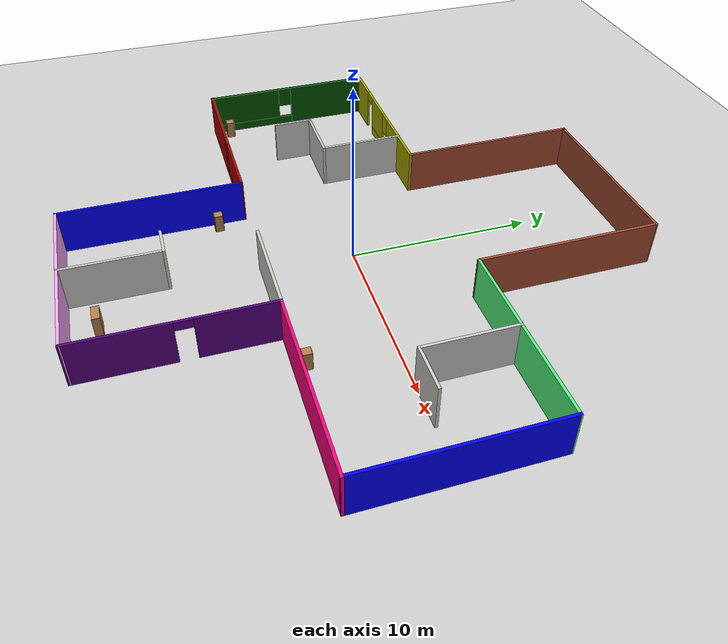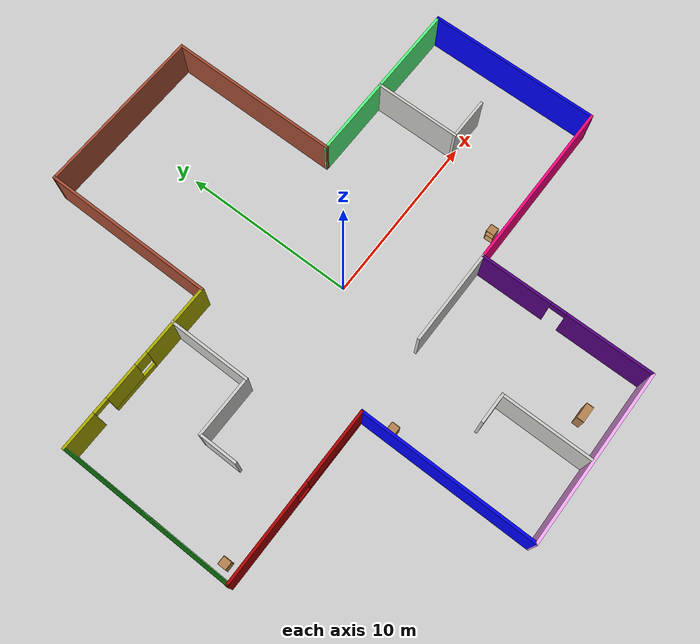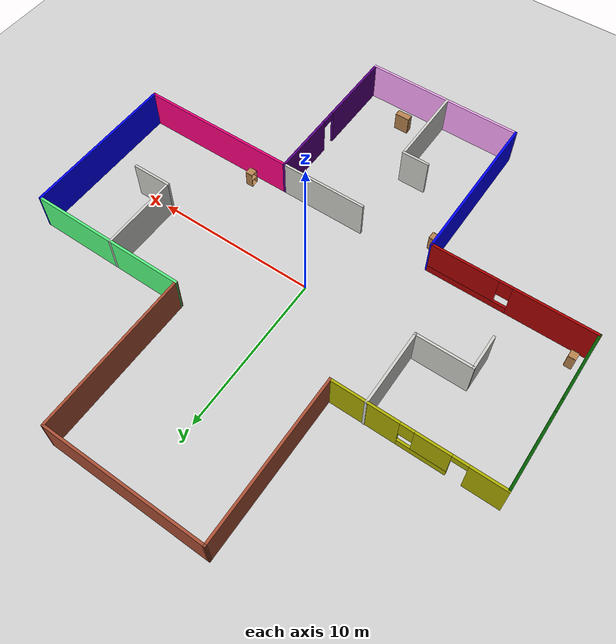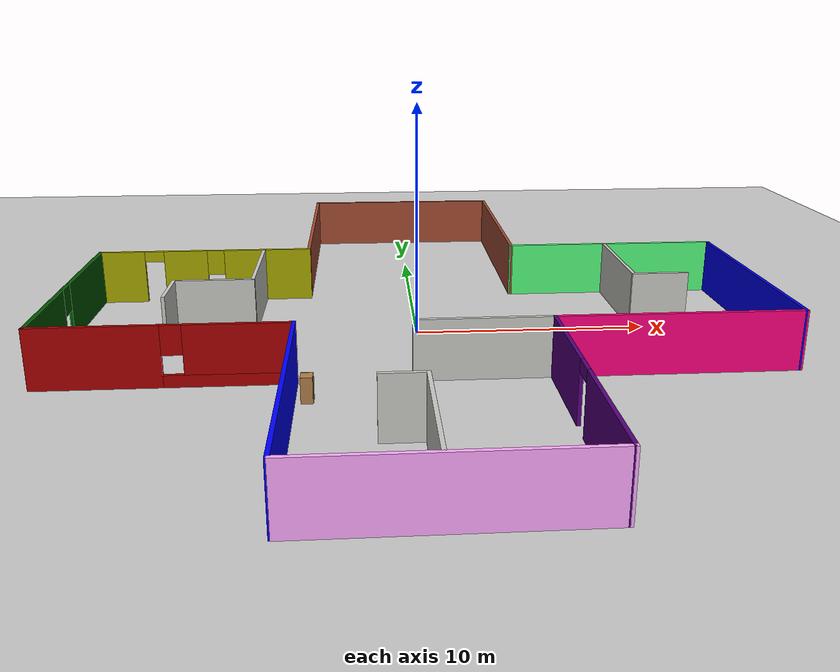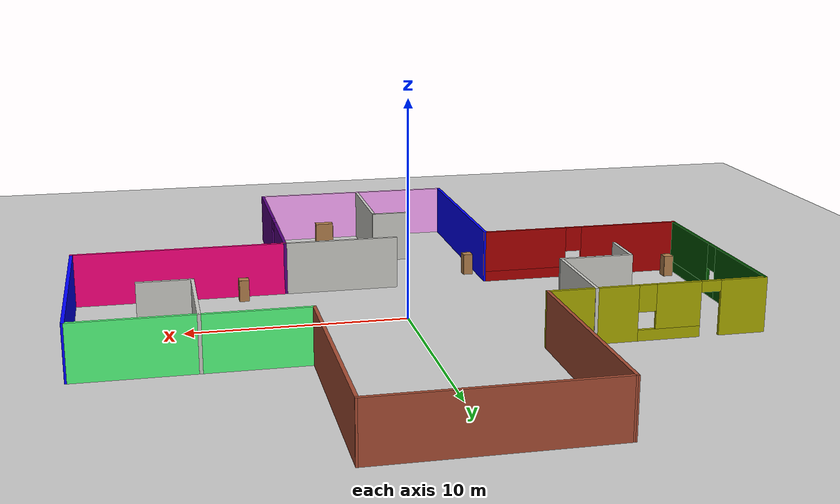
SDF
<sdf version="1.6">
 <world name="default">
  <model name="ground_plane">
   <static>1</static>
   <link name="link">
    <collision name="collision">
     <geometry><plane><normal>0 0 1</normal><size>100 100</size></plane></geometry>
     <surface><friction><ode><mu>100</mu><mu2>50</mu2></ode></friction></surface>
    </collision>
    <visual name="visual">
     <cast_shadows>0</cast_shadows>
     <geometry><plane><normal>0 0 1</normal><size>100 100</size></plane></geometry>
     <material>
      <script><uri>file://media/materials/scripts/gazebo.material</uri><name>Gazebo/Grey</name></script>
     </material>
    </visual>
   </link>
  </model>
  <model name="SumBuilding">
   <link name="Wall_1">
    <collision name="Wall_1_Collision">
     <geometry><box><size>10 0.15 2.5</size></box></geometry>
     <pose>0 0 1.25 0 -0 0</pose>
    </collision>
    <visual name="Wall_1_Visual">
     <pose>0 0 1.25 0 -0 0</pose>
     <geometry><box><size>10 0.15 2.5</size></box></geometry>
     <material>
      <script><uri>file://media/materials/scripts/gazebo.material</uri><name>Gazebo/Bricks</name></script>
      <ambient>0 1 0 1</ambient>
     </material>
     <meta><layer>0</layer></meta>
    </visual>
    <pose>0.013093 14.7751 0 0 0 -0.003397</pose>
   </link>
   <link name="Wall_11">
    <pose>-9.85305 -4.92335 0 0 -0 0</pose>
    <visual name="Wall_11_Visual_0">
     <pose>-2.50345 0 1.25 0 -0 0</pose>
     <geometry><box><size>4.99311 0.15 2.5</size></box></geometry>
     <material>
      <script><uri>file://media/materials/scripts/gazebo.material</uri><name>Gazebo/Grey</name></script>
      <ambient>0.666667 0 0 1</ambient>
     </material>
     <meta><layer>0</layer></meta>
    </visual>
    <collision name="Wall_11_Collision_0">
     <geometry><box><size>4.99311 0.15 2.5</size></box></geometry>
     <pose>-2.50345 0 1.25 0 -0 0</pose>
    </collision>
    <visual name="Wall_11_Visual_1">
     <pose>2.49655 0 0.25 0 -0 0</pose>
     <geometry><box><size>5.00689 0.15 0.5</size></box></geometry>
     <material>
      <script><uri>file://media/materials/scripts/gazebo.material</uri><name>Gazebo/Grey</name></script>
      <ambient>0.666667 0 0 1</ambient>
     </material>
     <meta><layer>0</layer></meta>
    </visual>
    <collision name="Wall_11_Collision_1">
     <geometry><box><size>5.00689 0.15 0.5</size></box></geometry>
     <pose>2.49655 0 0.25 0 -0 0</pose>
    </collision>
    <visual name="Wall_11_Visual_2">
     <pose>2.89655 0 1.5 0 -0 0</pose>
     <geometry><box><size>4.20689 0.15 2</size></box></geometry>
     <material>
      <script><uri>file://media/materials/scripts/gazebo.material</uri><name>Gazebo/Grey</name></script>
      <ambient>0.666667 0 0 1</ambient>
     </material>
     <meta><layer>0</layer></meta>
    </visual>
    <collision name="Wall_11_Collision_2">
     <geometry><box><size>4.20689 0.15 2</size></box></geometry>
     <pose>2.89655 0 1.5 0 -0 0</pose>
    </collision>
    <visual name="Wall_11_Visual_3">
     <pose>0.393106 0 1.9 0 -0 0</pose>
     <geometry><box><size>0.8 0.15 1.2</size></box></geometry>
     <material>
      <script><uri>file://media/materials/scripts/gazebo.material</uri><name>Gazebo/Grey</name></script>
      <ambient>0.666667 0 0 1</ambient>
     </material>
     <meta><layer>0</layer></meta>
    </visual>
    <collision name="Wall_11_Collision_3">
     <geometry><box><size>0.8 0.15 1.2</size></box></geometry>
     <pose>0.393106 0 1.9 0 -0 0</pose>
    </collision>
   </link>
   <link name="Wall_13">
    <collision name="Wall_13_Collision">
     <geometry><box><size>10 0.15 2.5</size></box></geometry>
     <pose>0 0 1.25 0 -0 0</pose>
    </collision>
    <visual name="Wall_13_Visual">
     <pose>0 0 1.25 0 -0 0</pose>
     <geometry><box><size>10 0.15 2.5</size></box></geometry>
     <material>
      <script><uri>file://media/materials/scripts/gazebo.material</uri><name>Gazebo/Grey</name></script>
      <ambient>0 0 1 1</ambient>
     </material>
     <meta><layer>0</layer></meta>
    </visual>
    <pose>-4.92501 -9.84834 0 0 0 -1.57018</pose>
   </link>
   <link name="Wall_15">
    <collision name="Wall_15_Collision">
     <geometry><box><size>10 0.15 2.5</size></box></geometry>
     <pose>0 0 1.25 0 -0 0</pose>
    </collision>
    <visual name="Wall_15_Visual">
     <pose>0 0 1.25 0 -0 0</pose>
     <geometry><box><size>10 0.15 2.5</size></box></geometry>
     <material>
      <script><uri>file://media/materials/scripts/gazebo.material</uri><name>Gazebo/Grey</name></script>
      <ambient>1 0.666667 1 1</ambient>
     </material>
     <meta><layer>0</layer></meta>
    </visual>
    <pose>0.003026 -14.7827 0 0 0 -0.001891</pose>
   </link>
   <link name="Wall_17">
    <pose>4.92801 -9.86697 0 0 -0 1.5708</pose>
    <visual name="Wall_17_Visual_0">
     <pose>-2.50628 0 1.25 0 -0 0</pose>
     <geometry><box><size>4.98743 0.15 2.5</size></box></geometry>
     <material>
      <script><uri>file://media/materials/scripts/gazebo.material</uri><name>Gazebo/Grey</name></script>
      <ambient>0.333333 0 0.498039 1</ambient>
     </material>
     <meta><layer>0</layer></meta>
    </visual>
    <collision name="Wall_17_Collision_0">
     <geometry><box><size>4.98743 0.15 2.5</size></box></geometry>
     <pose>-2.50628 0 1.25 0 -0 0</pose>
    </collision>
    <visual name="Wall_17_Visual_1">
     <pose>2.94372 0 1.25 0 -0 0</pose>
     <geometry><box><size>4.11257 0.15 2.5</size></box></geometry>
     <material>
      <script><uri>file://media/materials/scripts/gazebo.material</uri><name>Gazebo/Grey</name></script>
      <ambient>0.333333 0 0.498039 1</ambient>
     </material>
     <meta><layer>0</layer></meta>
    </visual>
    <collision name="Wall_17_Collision_1">
     <geometry><box><size>4.11257 0.15 2.5</size></box></geometry>
     <pose>2.94372 0 1.25 0 -0 0</pose>
    </collision>
    <visual name="Wall_17_Visual_2">
     <pose>0.437432 0 2.25 0 -0 0</pose>
     <geometry><box><size>0.9 0.15 0.5</size></box></geometry>
     <material>
      <script><uri>file://media/materials/scripts/gazebo.material</uri><name>Gazebo/Grey</name></script>
      <ambient>0.333333 0 0.498039 1</ambient>
     </material>
     <meta><layer>0</layer></meta>
    </visual>
    <collision name="Wall_17_Collision_2">
     <geometry><box><size>0.9 0.15 0.5</size></box></geometry>
     <pose>0.437432 0 2.25 0 -0 0</pose>
    </collision>
   </link>
   <link name="Wall_19">
    <collision name="Wall_19_Collision">
     <geometry><box><size>10 0.15 2.5</size></box></geometry>
     <pose>0 0 1.25 0 -0 0</pose>
    </collision>
    <visual name="Wall_19_Visual">
     <pose>0 0 1.25 0 -0 0</pose>
     <geometry><box><size>10 0.15 2.5</size></box></geometry>
     <material>
      <script><uri>file://media/materials/scripts/gazebo.material</uri><name>Gazebo/Grey</name></script>
      <ambient>1 0 0.498039 1</ambient>
     </material>
     <meta><layer>0</layer></meta>
    </visual>
    <pose>9.85301 -4.94178 0 0 -0 3.8e-05</pose>
   </link>
   <link name="Wall_21">
    <collision name="Wall_21_Collision">
     <geometry><box><size>10 0.15 2.5</size></box></geometry>
     <pose>0 0 1.25 0 -0 0</pose>
    </collision>
    <visual name="Wall_21_Visual">
     <pose>0 0 1.25 0 -0 0</pose>
     <geometry><box><size>10 0.15 2.5</size></box></geometry>
     <material>
      <script><uri>file://media/materials/scripts/gazebo.material</uri><name>Gazebo/Grey</name></script>
      <ambient>0 0 1 1</ambient>
     </material>
     <meta><layer>0</layer></meta>
    </visual>
    <pose>14.7753 -0.016591 0 0 -0 1.57134</pose>
   </link>
   <link name="Wall_23">
    <collision name="Wall_23_Collision">
     <geometry><box><size>10 0.15 2.5</size></box></geometry>
     <pose>0 0 1.25 0 -0 0</pose>
    </collision>
    <visual name="Wall_23_Visual">
     <pose>0 0 1.25 0 -0 0</pose>
     <geometry><box><size>10 0.15 2.5</size></box></geometry>
     <material>
      <script><uri>file://media/materials/scripts/gazebo.material</uri><name>Gazebo/Grey</name></script>
      <ambient>0.333333 1 0.498039 1</ambient>
     </material>
     <meta><layer>0</layer></meta>
    </visual>
    <pose>9.84762 4.90841 0 0 -0 3.14159</pose>
   </link>
   <link name="Wall_27">
    <collision name="Wall_27_Collision">
     <geometry><box><size>10 0.15 2.5</size></box></geometry>
     <pose>0 0 1.25 0 -0 0</pose>
    </collision>
    <visual name="Wall_27_Visual">
     <pose>0 0 1.25 0 -0 0</pose>
     <geometry><box><size>10 0.15 2.5</size></box></geometry>
     <material>
      <script><uri>file://media/materials/scripts/gazebo.material</uri><name>Gazebo/Bricks</name></script>
      <ambient>1 1 0 1</ambient>
     </material>
     <meta><layer>0</layer></meta>
    </visual>
    <pose>4.93035 9.8334 0 0 -0 1.56923</pose>
   </link>
   <link name="Wall_29">
    <collision name="Wall_29_Collision">
     <geometry><box><size>5 0.15 2.5</size></box></geometry>
     <pose>0 0 1.25 0 -0 0</pose>
    </collision>
    <visual name="Wall_29_Visual">
     <pose>0 0 1.25 0 -0 0</pose>
     <geometry><box><size>5 0.15 2.5</size></box></geometry>
     <material>
      <script><uri>file://media/materials/scripts/gazebo.material</uri><name>Gazebo/CeilingTiled</name></script>
      <ambient>0.333333 0.333333 1 1</ambient>
     </material>
     <meta><layer>0</layer></meta>
    </visual>
    <pose>9.53345 2.48414 0 0 0 -1.5708</pose>
   </link>
   <link name="Wall_3">
    <collision name="Wall_3_Collision">
     <geometry><box><size>10 0.15 2.5</size></box></geometry>
     <pose>0 0 1.25 0 -0 0</pose>
    </collision>
    <visual name="Wall_3_Visual">
     <pose>0 0 1.25 0 -0 0</pose>
     <geometry><box><size>10 0.15 2.5</size></box></geometry>
     <material>
      <script><uri>file://media/materials/scripts/gazebo.material</uri><name>Gazebo/Bricks</name></script>
      <ambient>0.666667 0.333333 0 1</ambient>
     </material>
     <meta><layer>0</layer></meta>
    </visual>
    <pose>-4.91188 9.86685 0 0 0 -1.5708</pose>
   </link>
   <link name="Wall_30">
    <collision name="Wall_30_Collision">
     <geometry><box><size>2.5 0.15 2.5</size></box></geometry>
     <pose>0 0 1.25 0 -0 0</pose>
    </collision>
    <visual name="Wall_30_Visual">
     <pose>0 0 1.25 0 -0 0</pose>
     <geometry><box><size>2.5 0.15 2.5</size></box></geometry>
     <material>
      <script><uri>file://media/materials/scripts/gazebo.material</uri><name>Gazebo/CeilingTiled</name></script>
      <ambient>0.333333 0.333333 1 1</ambient>
     </material>
     <meta><layer>0</layer></meta>
    </visual>
    <pose>10.7084 0.059135 0 0 -0 0</pose>
   </link>
   <link name="Wall_32">
    <collision name="Wall_32_Collision">
     <geometry><box><size>5.25 0.15 2.5</size></box></geometry>
     <pose>0 0 1.25 0 -0 0</pose>
    </collision>
    <visual name="Wall_32_Visual">
     <pose>0 0 1.25 0 -0 0</pose>
     <geometry><box><size>5.25 0.15 2.5</size></box></geometry>
     <material>
      <script><uri>file://media/materials/scripts/gazebo.material</uri><name>Gazebo/CeilingTiled</name></script>
      <ambient>0.333333 0.666667 1 1</ambient>
     </material>
     <meta><layer>0</layer></meta>
    </visual>
    <pose>-0.257513 -12.2298 0 0 -0 1.5708</pose>
   </link>
   <link name="Wall_33">
    <collision name="Wall_33_Collision">
     <geometry><box><size>1.75 0.15 2.5</size></box></geometry>
     <pose>0 0 1.25 0 -0 0</pose>
    </collision>
    <visual name="Wall_33_Visual">
     <pose>0 0 1.25 0 -0 0</pose>
     <geometry><box><size>1.75 0.15 2.5</size></box></geometry>
     <material>
      <script><uri>file://media/materials/scripts/gazebo.material</uri><name>Gazebo/CeilingTiled</name></script>
      <ambient>0.333333 0 0.498039 1</ambient>
     </material>
     <meta><layer>0</layer></meta>
    </visual>
    <pose>-1.05751 -9.67979 0 0 -0 3.14159</pose>
   </link>
   <link name="Wall_35">
    <collision name="Wall_35_Collision">
     <geometry><box><size>5.5 0.15 2.5</size></box></geometry>
     <pose>0 0 1.25 0 -0 0</pose>
    </collision>
    <visual name="Wall_35_Visual">
     <pose>0 0 1.25 0 -0 0</pose>
     <geometry><box><size>5.5 0.15 2.5</size></box></geometry>
     <material>
      <script><uri>file://media/materials/scripts/gazebo.material</uri><name>Gazebo/CeilingTiled</name></script>
      <ambient>1 0.666667 0 1</ambient>
     </material>
     <meta><layer>0</layer></meta>
    </visual>
    <pose>2.25301 -4.94197 0 0 -0 3.14159</pose>
   </link>
   <link name="Wall_37">
    <collision name="Wall_37_Collision">
     <geometry><box><size>4.75 0.15 2.5</size></box></geometry>
     <pose>0 0 1.25 0 -0 0</pose>
    </collision>
    <visual name="Wall_37_Visual">
     <pose>0 0 1.25 0 -0 0</pose>
     <geometry><box><size>4.75 0.15 2.5</size></box></geometry>
     <material>
      <script><uri>file://media/materials/scripts/gazebo.material</uri><name>Gazebo/CeilingTiled</name></script>
      <ambient>0.666667 0 1 1</ambient>
     </material>
     <meta><layer>0</layer></meta>
    </visual>
    <pose>-7.05233 2.66264 0 0 0 -1.5708</pose>
   </link>
   <link name="Wall_38">
    <collision name="Wall_38_Collision">
     <geometry><box><size>3.5 0.15 2.5</size></box></geometry>
     <pose>0 0 1.25 0 -0 0</pose>
    </collision>
    <visual name="Wall_38_Visual">
     <pose>0 0 1.25 0 -0 0</pose>
     <geometry><box><size>3.5 0.15 2.5</size></box></geometry>
     <material>
      <script><uri>file://media/materials/scripts/gazebo.material</uri><name>Gazebo/CeilingTiled</name></script>
      <ambient>0.666667 0 1 1</ambient>
     </material>
     <meta><layer>0</layer></meta>
    </visual>
    <pose>-8.72733 0.362638 0 0 -0 3.14159</pose>
   </link>
   <link name="Wall_39">
    <collision name="Wall_39_Collision">
     <geometry><box><size>2.25 0.15 2.5</size></box></geometry>
     <pose>0 0 1.25 0 -0 0</pose>
    </collision>
    <visual name="Wall_39_Visual">
     <pose>0 0 1.25 0 -0 0</pose>
     <geometry><box><size>2.25 0.15 2.5</size></box></geometry>
     <material>
      <script><uri>file://media/materials/scripts/gazebo.material</uri><name>Gazebo/CeilingTiled</name></script>
      <ambient>0.666667 0 1 1</ambient>
     </material>
     <meta><layer>0</layer></meta>
    </visual>
    <pose>-10.4023 -0.687362 0 0 0 -1.5708</pose>
   </link>
   <link name="Wall_7">
    <pose>-9.83688 4.94185 0 0 -0 3.14159</pose>
    <visual name="Wall_7_Visual_0">
     <pose>-2.94197 0 1.25 0 -0 0</pose>
     <geometry><box><size>4.11606 0.15 2.5</size></box></geometry>
     <material>
      <script><uri>file://media/materials/scripts/gazebo.material</uri><name>Gazebo/Grey</name></script>
      <ambient>0.666667 0.666667 0 1</ambient>
     </material>
     <meta><layer>0</layer></meta>
    </visual>
    <collision name="Wall_7_Collision_0">
     <geometry><box><size>4.11606 0.15 2.5</size></box></geometry>
     <pose>-2.94197 0 1.25 0 -0 0</pose>
    </collision>
    <visual name="Wall_7_Visual_1">
     <pose>3.9276 0 1.25 0 -0 0</pose>
     <geometry><box><size>2.14481 0.15 2.5</size></box></geometry>
     <material>
      <script><uri>file://media/materials/scripts/gazebo.material</uri><name>Gazebo/Grey</name></script>
      <ambient>0.666667 0.666667 0 1</ambient>
     </material>
     <meta><layer>0</layer></meta>
    </visual>
    <collision name="Wall_7_Collision_1">
     <geometry><box><size>2.14481 0.15 2.5</size></box></geometry>
     <pose>3.9276 0 1.25 0 -0 0</pose>
    </collision>
    <visual name="Wall_7_Visual_2">
     <pose>0.535626 0 0.25 0 -0 0</pose>
     <geometry><box><size>2.83914 0.15 0.5</size></box></geometry>
     <material>
      <script><uri>file://media/materials/scripts/gazebo.material</uri><name>Gazebo/Grey</name></script>
      <ambient>0.666667 0.666667 0 1</ambient>
     </material>
     <meta><layer>0</layer></meta>
    </visual>
    <collision name="Wall_7_Collision_2">
     <geometry><box><size>2.83914 0.15 0.5</size></box></geometry>
     <pose>0.535626 0 0.25 0 -0 0</pose>
    </collision>
    <visual name="Wall_7_Visual_3">
     <pose>0.935626 0 1.5 0 -0 0</pose>
     <geometry><box><size>2.03913 0.15 2</size></box></geometry>
     <material>
      <script><uri>file://media/materials/scripts/gazebo.material</uri><name>Gazebo/Grey</name></script>
      <ambient>0.666667 0.666667 0 1</ambient>
     </material>
     <meta><layer>0</layer></meta>
    </visual>
    <collision name="Wall_7_Collision_3">
     <geometry><box><size>2.03913 0.15 2</size></box></geometry>
     <pose>0.935626 0 1.5 0 -0 0</pose>
    </collision>
    <visual name="Wall_7_Visual_4">
     <pose>-0.483942 0 1.9 0 -0 0</pose>
     <geometry><box><size>0.8 0.15 1.2</size></box></geometry>
     <material>
      <script><uri>file://media/materials/scripts/gazebo.material</uri><name>Gazebo/Grey</name></script>
      <ambient>0.666667 0.666667 0 1</ambient>
     </material>
     <meta><layer>0</layer></meta>
    </visual>
    <collision name="Wall_7_Collision_4">
     <geometry><box><size>0.8 0.15 1.2</size></box></geometry>
     <pose>-0.483942 0 1.9 0 -0 0</pose>
    </collision>
    <visual name="Wall_7_Visual_5">
     <pose>2.40519 0 2.25 0 -0 0</pose>
     <geometry><box><size>0.9 0.15 0.5</size></box></geometry>
     <material>
      <script><uri>file://media/materials/scripts/gazebo.material</uri><name>Gazebo/Grey</name></script>
      <ambient>0.666667 0.666667 0 1</ambient>
     </material>
     <meta><layer>0</layer></meta>
    </visual>
    <collision name="Wall_7_Collision_5">
     <geometry><box><size>0.9 0.15 0.5</size></box></geometry>
     <pose>2.40519 0 2.25 0 -0 0</pose>
    </collision>
   </link>
   <link name="Wall_9">
    <pose>-14.7619 0.016854 0 0 0 -1.5708</pose>
    <visual name="Wall_9_Visual_0">
     <pose>-2.57802 0 1.25 0 -0 0</pose>
     <geometry><box><size>4.84396 0.15 2.5</size></box></geometry>
     <material>
      <script><uri>file://media/materials/scripts/gazebo.material</uri><name>Gazebo/Grey</name></script>
      <ambient>0 0.333333 0 1</ambient>
     </material>
     <meta><layer>0</layer></meta>
    </visual>
    <collision name="Wall_9_Collision_0">
     <geometry><box><size>4.84396 0.15 2.5</size></box></geometry>
     <pose>-2.57802 0 1.25 0 -0 0</pose>
    </collision>
    <visual name="Wall_9_Visual_1">
     <pose>2.42198 0 0.25 0 -0 0</pose>
     <geometry><box><size>5.15604 0.15 0.5</size></box></geometry>
     <material>
      <script><uri>file://media/materials/scripts/gazebo.material</uri><name>Gazebo/Grey</name></script>
      <ambient>0 0.333333 0 1</ambient>
     </material>
     <meta><layer>0</layer></meta>
    </visual>
    <collision name="Wall_9_Collision_1">
     <geometry><box><size>5.15604 0.15 0.5</size></box></geometry>
     <pose>2.42198 0 0.25 0 -0 0</pose>
    </collision>
    <visual name="Wall_9_Visual_2">
     <pose>2.82198 0 1.5 0 -0 0</pose>
     <geometry><box><size>4.35604 0.15 2</size></box></geometry>
     <material>
      <script><uri>file://media/materials/scripts/gazebo.material</uri><name>Gazebo/Grey</name></script>
      <ambient>0 0.333333 0 1</ambient>
     </material>
     <meta><layer>0</layer></meta>
    </visual>
    <collision name="Wall_9_Collision_2">
     <geometry><box><size>4.35604 0.15 2</size></box></geometry>
     <pose>2.82198 0 1.5 0 -0 0</pose>
    </collision>
    <visual name="Wall_9_Visual_3">
     <pose>0.243959 0 1.9 0 -0 0</pose>
     <geometry><box><size>0.8 0.15 1.2</size></box></geometry>
     <material>
      <script><uri>file://media/materials/scripts/gazebo.material</uri><name>Gazebo/Grey</name></script>
      <ambient>0 0.333333 0 1</ambient>
     </material>
     <meta><layer>0</layer></meta>
    </visual>
    <collision name="Wall_9_Collision_3">
     <geometry><box><size>0.8 0.15 1.2</size></box></geometry>
     <pose>0.243959 0 1.9 0 -0 0</pose>
    </collision>
   </link>
   <static>1</static>
  </model>
  <model name="cabinet_clone">
   <static>1</static>
   <link name="cabinet_bottom_plate">
    <inertial>
     <pose>0 0 -1 0 -0 0</pose>
     <inertia><ixx>2.05</ixx><ixy>0</ixy><ixz>0</ixz><iyy>2.05</iyy><iyz>0</iyz><izz>2.05</izz></inertia>
     <mass>25</mass>
    </inertial>
    <collision name="cabinet_bottom_plate_geom">
     <pose>0 0 0.01 0 -0 0</pose>
     <geometry><box><size>0.45 0.45 0.02</size></box></geometry>
    </collision>
    <visual name="cabinet_bottom_plate_geom_visual">
     <pose>0 0 0.01 0 -0 0</pose>
     <geometry><box><size>0.45 0.45 0.02</size></box></geometry>
     <material>
      <script><uri>file://media/materials/scripts/gazebo.material</uri><name>Gazebo/Wood</name></script>
     </material>
    </visual>
    <collision name="cabinet_bottom_plate_geom_cabinet_back_plate">
     <pose>0.235 0 0.51 0 -0 0</pose>
     <geometry><box><size>0.02 0.45 1.02</size></box></geometry>
    </collision>
    <visual name="cabinet_bottom_plate_geom_cabinet_back_plate_visual">
     <pose>0.235 0 0.51 0 -0 0</pose>
     <geometry><box><size>0.02 0.45 1.02</size></box></geometry>
     <material>
      <script><uri>file://media/materials/scripts/gazebo.material</uri><name>Gazebo/Wood</name></script>
     </material>
    </visual>
    <collision name="cabinet_bottom_plate_geom_cabinet_left_plate">
     <pose>0 0.235 0.51 0 -0 0</pose>
     <geometry><box><size>0.45 0.02 1.02</size></box></geometry>
    </collision>
    <visual name="cabinet_bottom_plate_geom_cabinet_left_plate_visual">
     <pose>0 0.235 0.51 0 -0 0</pose>
     <geometry><box><size>0.45 0.02 1.02</size></box></geometry>
     <material>
      <script><uri>file://media/materials/scripts/gazebo.material</uri><name>Gazebo/Wood</name></script>
     </material>
    </visual>
    <collision name="cabinet_bottom_plate_geom_cabinet_middle_plate">
     <pose>0 0 0.51 0 -0 0</pose>
     <geometry><box><size>0.45 0.45 0.02</size></box></geometry>
    </collision>
    <visual name="cabinet_bottom_plate_geom_cabinet_middle_plate_visual">
     <pose>0 0 0.51 0 -0 0</pose>
     <geometry><box><size>0.45 0.45 0.02</size></box></geometry>
     <material>
      <script><uri>file://media/materials/scripts/gazebo.material</uri><name>Gazebo/Wood</name></script>
     </material>
    </visual>
    <collision name="cabinet_bottom_plate_geom_cabinet_right_plate">
     <pose>0 -0.235 0.51 0 -0 0</pose>
     <geometry><box><size>0.45 0.02 1.02</size></box></geometry>
    </collision>
    <visual name="cabinet_bottom_plate_geom_cabinet_right_plate_visual">
     <pose>0 -0.235 0.51 0 -0 0</pose>
     <geometry><box><size>0.45 0.02 1.02</size></box></geometry>
     <material>
      <script><uri>file://media/materials/scripts/gazebo.material</uri><name>Gazebo/Wood</name></script>
     </material>
    </visual>
    <collision name="cabinet_bottom_plate_geom_cabinet_top_plate">
     <pose>0 0 1.01 0 -0 0</pose>
     <geometry><box><size>0.45 0.45 0.02</size></box></geometry>
    </collision>
    <visual name="cabinet_bottom_plate_geom_cabinet_top_plate_visual">
     <pose>0 0 1.01 0 -0 0</pose>
     <geometry><box><size>0.45 0.45 0.02</size></box></geometry>
     <material>
      <script><uri>file://media/materials/scripts/gazebo.material</uri><name>Gazebo/Wood</name></script>
     </material>
    </visual>
   </link>
   <pose>-14.1468 -4.05254 0 0 -0 0</pose>
  </model>
  <model name="cabinet_clone_clone_clone_clone_0">
   <static>1</static>
   <link name="cabinet_bottom_plate">
    <inertial>
     <pose>0 0 -1 0 -0 0</pose>
     <inertia><ixx>2.05</ixx><ixy>0</ixy><ixz>0</ixz><iyy>2.05</iyy><iyz>0</iyz><izz>2.05</izz></inertia>
     <mass>25</mass>
    </inertial>
    <collision name="cabinet_bottom_plate_geom">
     <pose>0 0 0.01 0 -0 0</pose>
     <geometry><box><size>0.45 0.45 0.02</size></box></geometry>
    </collision>
    <visual name="cabinet_bottom_plate_geom_visual">
     <pose>0 0 0.01 0 -0 0</pose>
     <geometry><box><size>0.45 0.45 0.02</size></box></geometry>
     <material>
      <script><uri>file://media/materials/scripts/gazebo.material</uri><name>Gazebo/Wood</name></script>
     </material>
    </visual>
    <collision name="cabinet_bottom_plate_geom_cabinet_back_plate">
     <pose>0.235 0 0.51 0 -0 0</pose>
     <geometry><box><size>0.02 0.45 1.02</size></box></geometry>
    </collision>
    <visual name="cabinet_bottom_plate_geom_cabinet_back_plate_visual">
     <pose>0.235 0 0.51 0 -0 0</pose>
     <geometry><box><size>0.02 0.45 1.02</size></box></geometry>
     <material>
      <script><uri>file://media/materials/scripts/gazebo.material</uri><name>Gazebo/Wood</name></script>
     </material>
    </visual>
    <collision name="cabinet_bottom_plate_geom_cabinet_left_plate">
     <pose>0 0.235 0.51 0 -0 0</pose>
     <geometry><box><size>0.45 0.02 1.02</size></box></geometry>
    </collision>
    <visual name="cabinet_bottom_plate_geom_cabinet_left_plate_visual">
     <pose>0 0.235 0.51 0 -0 0</pose>
     <geometry><box><size>0.45 0.02 1.02</size></box></geometry>
     <material>
      <script><uri>file://media/materials/scripts/gazebo.material</uri><name>Gazebo/Wood</name></script>
     </material>
    </visual>
    <collision name="cabinet_bottom_plate_geom_cabinet_middle_plate">
     <pose>0 0 0.51 0 -0 0</pose>
     <geometry><box><size>0.45 0.45 0.02</size></box></geometry>
    </collision>
    <visual name="cabinet_bottom_plate_geom_cabinet_middle_plate_visual">
     <pose>0 0 0.51 0 -0 0</pose>
     <geometry><box><size>0.45 0.45 0.02</size></box></geometry>
     <material>
      <script><uri>file://media/materials/scripts/gazebo.material</uri><name>Gazebo/Wood</name></script>
     </material>
    </visual>
    <collision name="cabinet_bottom_plate_geom_cabinet_right_plate">
     <pose>0 -0.235 0.51 0 -0 0</pose>
     <geometry><box><size>0.45 0.02 1.02</size></box></geometry>
    </collision>
    <visual name="cabinet_bottom_plate_geom_cabinet_right_plate_visual">
     <pose>0 -0.235 0.51 0 -0 0</pose>
     <geometry><box><size>0.45 0.02 1.02</size></box></geometry>
     <material>
      <script><uri>file://media/materials/scripts/gazebo.material</uri><name>Gazebo/Wood</name></script>
     </material>
    </visual>
    <collision name="cabinet_bottom_plate_geom_cabinet_top_plate">
     <pose>0 0 1.01 0 -0 0</pose>
     <geometry><box><size>0.45 0.45 0.02</size></box></geometry>
    </collision>
    <visual name="cabinet_bottom_plate_geom_cabinet_top_plate_visual">
     <pose>0 0 1.01 0 -0 0</pose>
     <geometry><box><size>0.45 0.45 0.02</size></box></geometry>
     <material>
      <script><uri>file://media/materials/scripts/gazebo.material</uri><name>Gazebo/Wood</name></script>
     </material>
    </visual>
   </link>
   <pose>-4.41942 -6.45119 0 0 -0 0</pose>
  </model>
  <model name="cabinet_clone_clone_clone_clone_0_clone">
   <static>1</static>
   <link name="cabinet_bottom_plate">
    <inertial>
     <pose>0 0 -1 0 -0 0</pose>
     <inertia><ixx>2.05</ixx><ixy>0</ixy><ixz>0</ixz><iyy>2.05</iyy><iyz>0</iyz><izz>2.05</izz></inertia>
     <mass>25</mass>
    </inertial>
    <collision name="cabinet_bottom_plate_geom">
     <pose>0 0 0.01 0 -0 0</pose>
     <geometry><box><size>0.45 0.45 0.02</size></box></geometry>
    </collision>
    <visual name="cabinet_bottom_plate_geom_visual">
     <pose>0 0 0.01 0 -0 0</pose>
     <geometry><box><size>0.45 0.45 0.02</size></box></geometry>
     <material>
      <script><uri>file://media/materials/scripts/gazebo.material</uri><name>Gazebo/Wood</name></script>
     </material>
    </visual>
    <collision name="cabinet_bottom_plate_geom_cabinet_back_plate">
     <pose>0.235 0 0.51 0 -0 0</pose>
     <geometry><box><size>0.02 0.45 1.02</size></box></geometry>
    </collision>
    <visual name="cabinet_bottom_plate_geom_cabinet_back_plate_visual">
     <pose>0.235 0 0.51 0 -0 0</pose>
     <geometry><box><size>0.02 0.45 1.02</size></box></geometry>
     <material>
      <script><uri>file://media/materials/scripts/gazebo.material</uri><name>Gazebo/Wood</name></script>
     </material>
    </visual>
    <collision name="cabinet_bottom_plate_geom_cabinet_left_plate">
     <pose>0 0.235 0.51 0 -0 0</pose>
     <geometry><box><size>0.45 0.02 1.02</size></box></geometry>
    </collision>
    <visual name="cabinet_bottom_plate_geom_cabinet_left_plate_visual">
     <pose>0 0.235 0.51 0 -0 0</pose>
     <geometry><box><size>0.45 0.02 1.02</size></box></geometry>
     <material>
      <script><uri>file://media/materials/scripts/gazebo.material</uri><name>Gazebo/Wood</name></script>
     </material>
    </visual>
    <collision name="cabinet_bottom_plate_geom_cabinet_middle_plate">
     <pose>0 0 0.51 0 -0 0</pose>
     <geometry><box><size>0.45 0.45 0.02</size></box></geometry>
    </collision>
    <visual name="cabinet_bottom_plate_geom_cabinet_middle_plate_visual">
     <pose>0 0 0.51 0 -0 0</pose>
     <geometry><box><size>0.45 0.45 0.02</size></box></geometry>
     <material>
      <script><uri>file://media/materials/scripts/gazebo.material</uri><name>Gazebo/Wood</name></script>
     </material>
    </visual>
    <collision name="cabinet_bottom_plate_geom_cabinet_right_plate">
     <pose>0 -0.235 0.51 0 -0 0</pose>
     <geometry><box><size>0.45 0.02 1.02</size></box></geometry>
    </collision>
    <visual name="cabinet_bottom_plate_geom_cabinet_right_plate_visual">
     <pose>0 -0.235 0.51 0 -0 0</pose>
     <geometry><box><size>0.45 0.02 1.02</size></box></geometry>
     <material>
      <script><uri>file://media/materials/scripts/gazebo.material</uri><name>Gazebo/Wood</name></script>
     </material>
    </visual>
    <collision name="cabinet_bottom_plate_geom_cabinet_top_plate">
     <pose>0 0 1.01 0 -0 0</pose>
     <geometry><box><size>0.45 0.45 0.02</size></box></geometry>
    </collision>
    <visual name="cabinet_bottom_plate_geom_cabinet_top_plate_visual">
     <pose>0 0 1.01 0 -0 0</pose>
     <geometry><box><size>0.45 0.45 0.02</size></box></geometry>
     <material>
      <script><uri>file://media/materials/scripts/gazebo.material</uri><name>Gazebo/Wood</name></script>
     </material>
    </visual>
   </link>
   <pose>6.97699 -4.33145 0 0 -0 0</pose>
  </model>
  <model name="bookshelf_clone">
   <static>1</static>
   <link name="link">
    <inertial><mass>1</mass></inertial>
    <collision name="back">
     <pose>0 0.005 0.6 0 -0 0</pose>
     <geometry><box><size>0.9 0.01 1.2</size></box></geometry>
    </collision>
    <visual name="visual1">
     <pose>0 0.005 0.6 0 -0 0</pose>
     <geometry><box><size>0.9 0.01 1.2</size></box></geometry>
     <material>
      <script><uri>file://media/materials/scripts/gazebo.material</uri><name>Gazebo/Wood</name></script>
     </material>
    </visual>
    <collision name="left_side">
     <pose>0.45 -0.195 0.6 0 -0 0</pose>
     <geometry><box><size>0.02 0.4 1.2</size></box></geometry>
    </collision>
    <visual name="visual2">
     <pose>0.45 -0.195 0.6 0 -0 0</pose>
     <geometry><box><size>0.02 0.4 1.2</size></box></geometry>
     <material>
      <script><uri>file://media/materials/scripts/gazebo.material</uri><name>Gazebo/Wood</name></script>
     </material>
    </visual>
    <collision name="right_side">
     <pose>-0.45 -0.195 0.6 0 -0 0</pose>
     <geometry><box><size>0.02 0.4 1.2</size></box></geometry>
    </collision>
    <visual name="visual3">
     <pose>-0.45 -0.195 0.6 0 -0 0</pose>
     <geometry><box><size>0.02 0.4 1.2</size></box></geometry>
     <material>
      <script><uri>file://media/materials/scripts/gazebo.material</uri><name>Gazebo/Wood</name></script>
     </material>
    </visual>
    <collision name="bottom">
     <pose>0 -0.195 0.03 0 -0 0</pose>
     <geometry><box><size>0.88 0.4 0.06</size></box></geometry>
    </collision>
    <visual name="visual4">
     <pose>0 -0.195 0.03 0 -0 0</pose>
     <geometry><box><size>0.88 0.4 0.06</size></box></geometry>
     <material>
      <script><uri>file://media/materials/scripts/gazebo.material</uri><name>Gazebo/Wood</name></script>
     </material>
    </visual>
    <collision name="top">
     <pose>0 -0.195 1.19 0 -0 0</pose>
     <geometry><box><size>0.88 0.4 0.02</size></box></geometry>
    </collision>
    <visual name="visual5">
     <pose>0 -0.195 1.19 0 -0 0</pose>
     <geometry><box><size>0.88 0.4 0.02</size></box></geometry>
     <material>
      <script><uri>file://media/materials/scripts/gazebo.material</uri><name>Gazebo/Wood</name></script>
     </material>
    </visual>
    <collision name="low_shelf">
     <pose>0 -0.195 0.43 0 -0 0</pose>
     <geometry><box><size>0.88 0.4 0.02</size></box></geometry>
    </collision>
    <visual name="visual6">
     <pose>0 -0.195 0.43 0 -0 0</pose>
     <geometry><box><size>0.88 0.4 0.02</size></box></geometry>
     <material>
      <script><uri>file://media/materials/scripts/gazebo.material</uri><name>Gazebo/Wood</name></script>
     </material>
    </visual>
    <collision name="high_shelf">
     <pose>0 -0.195 0.8 0 -0 0</pose>
     <geometry><box><size>0.88 0.4 0.02</size></box></geometry>
    </collision>
    <visual name="visual7">
     <pose>0 -0.195 0.8 0 -0 0</pose>
     <geometry><box><size>0.88 0.4 0.02</size></box></geometry>
     <material>
      <script><uri>file://media/materials/scripts/gazebo.material</uri><name>Gazebo/Wood</name></script>
     </material>
    </visual>
   </link>
   <pose>1.81705 -13.1276 0 0 -0 0</pose>
  </model>
 </world>
</sdf>
